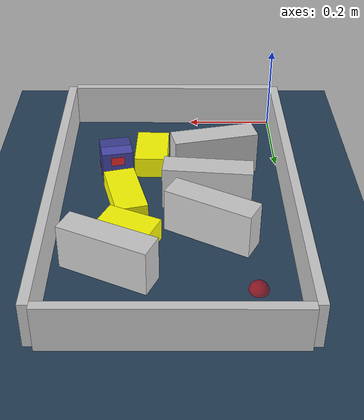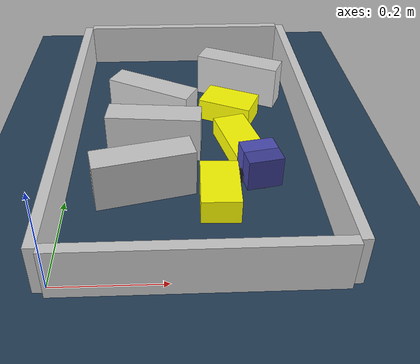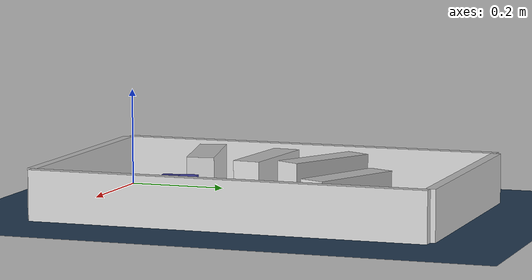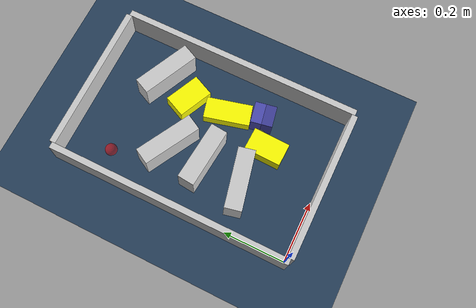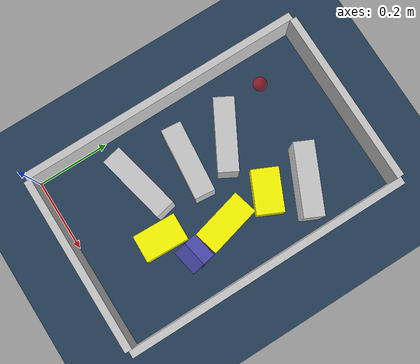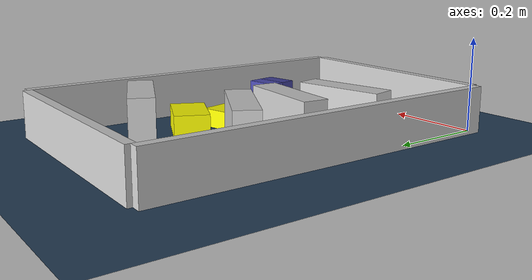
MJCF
<?xml version='1.0' encoding='utf-8'?>
<mujoco model="real_buildable">
  <compiler angle="degree" />
  <option timestep="0.002" integrator="implicitfast" iterations="100" cone="elliptic" />
  <default>
    <geom density="1" />
  </default>
  <asset>
    <texture builtin="gradient" height="3072" rgb1="0.3 0.5 0.7" rgb2="0 0 0" type="skybox" width="512" />
    <texture builtin="checker" height="300" mark="edge" markrgb="0.8 0.8 0.8" name="groundplane" rgb1="0.2 0.3 0.4" rgb2="0.1 0.2 0.3" type="2d" width="300" />
    <material name="groundplane" reflectance="0.2" texrepeat="5 5" texture="groundplane" texuniform="true" />
  </asset>
  <worldbody>
    <light dir="0 0 -1" directional="true" pos="0 0 1.5" />
    <geom name="floor" type="plane" condim="4" friction="0.5 0.005 0.001" material="groundplane" size="0 0 0.05" />
    <body name="walls">
      <geom name="wall_boundary_left" type="box" condim="4" friction="1.0 0.005 0.0001" rgba="0.8 0.8 0.8 1" pos="-0.010000 0.387500 0.050000" euler="0 0 0.000000" size="0.010000 0.397500 0.050000" />
      <geom name="wall_boundary_right" type="box" condim="4" friction="1.0 0.005 0.0001" rgba="0.8 0.8 0.8 1" pos="0.500000 0.387500 0.050000" euler="0 0 0.000000" size="0.010000 0.397500 0.050000" />
      <geom name="wall_boundary_bottom" type="box" condim="4" friction="1.0 0.005 0.0001" rgba="0.8 0.8 0.8 1" pos="0.245000 -0.010000 0.050000" euler="0 0 0.000000" size="0.245000 0.010000 0.050000" />
      <geom name="wall_boundary_top" type="box" condim="4" friction="1.0 0.005 0.0001" rgba="0.8 0.8 0.8 1" pos="0.245000 0.785000 0.050000" euler="0 0 0.000000" size="0.245000 0.010000 0.050000" />
      <geom name="wall_inner_1" type="box" condim="4" friction="1.0 0.005 0.0001" rgba="0.8 0.8 0.8 1" pos="0.150663 0.222667 0.050000" euler="0 0 192.552249" size="0.097500 0.027500 0.050000" />
      <geom name="wall_inner_2" type="box" condim="4" friction="1.0 0.005 0.0001" rgba="0.8 0.8 0.8 1" pos="0.169535 0.357190 0.050000" euler="0 0 174.526603" size="0.097500 0.027500 0.050000" />
      <geom name="wall_inner_3" type="box" condim="4" friction="1.0 0.005 0.0001" rgba="0.8 0.8 0.8 1" pos="0.165000 0.474000 0.050000" euler="0 0 151.300000" size="0.097500 0.027500 0.050000" />
      <geom name="wall_inner_4" type="box" condim="4" friction="1.0 0.005 0.0001" rgba="0.8 0.8 0.8 1" pos="0.372000 0.588000 0.050000" euler="0 0 154.700000" size="0.097500 0.027500 0.050000" />
    </body>
    <body name="car" pos="0.37642384063745415 0.24636826526928154 0.01" quat="0.63933678737106392 0 0 0.76892683157375064">
      <freejoint name="car_freejoint" />
      <inertial pos="0 0 0.0375" mass="0.35" diaginertia="0.000266 0.000266 0.000286" />
      <geom name="front_chassis_collision" type="box" pos="0.0175 0 0.0375" size="0.0175 0.035 0.0325" rgba="0.3 0.3 0.7 1" />
      <geom name="rear_chassis_collision" type="box" pos="-0.0175 0 0.0375" size="0.0175 0.035 0.0325" rgba="0.25 0.25 0.6 1" />
      <geom name="front_marker" type="box" pos="0.034 0 0.0505" size="0.002 0.015 0.01" rgba="1 0.2 0.2 1" contype="0" conaffinity="0" />
      <body name="rear_support_body" pos="-0.03 0 0.0025">
        <joint name="rear_caster_joint" type="ball" damping="0.0001" />
        <inertial pos="0 0 0" mass="0.025" diaginertia="0.000001 0.000001 0.000001" />
        <geom name="rear_support" type="sphere" pos="0 0 0" size="0.0025" friction="0 0 0" rgba="0.7 0.1 0.1 1" />
      </body>
      <body name="front_support_body" pos="0.03 0 0.0025">
        <joint name="front_caster_joint" type="ball" damping="0.0001" />
        <inertial pos="0 0 0" mass="0.025" diaginertia="0.000001 0.000001 0.000001" />
        <geom name="front_support" type="sphere" pos="0 0 0" size="0.0025" friction="0 0 0" rgba="0.1 0.7 0.1 1" />
      </body>
      <body name="left_wheel" pos="0 0.0375 0.015">
        <inertial pos="0 0 0" mass="0.05" diaginertia="0.000003 0.000006 0.000003" />
        <joint name="left_wheel_joint" type="hinge" axis="0 1 0" damping="0.01" armature="0.0001" />
        <geom name="left_wheel_collision" type="cylinder" size="0.015 0.0005" euler="90 0 0" rgba="0.1 0.1 0.1 1" />
      </body>
      <body name="right_wheel" pos="0 -0.0375 0.015">
        <inertial pos="0 0 0" mass="0.05" diaginertia="0.000003 0.000006 0.000003" />
        <joint name="right_wheel_joint" type="hinge" axis="0 1 0" damping="0.01" armature="0.0001" />
        <geom name="right_wheel_collision" type="cylinder" size="0.015 0.0005" euler="90 0 0" rgba="0.1 0.1 0.1 1" />
      </body>
    </body>
    <body name="obstacle_0_movable">
      <geom name="obstacle_0_movable" condim="4" pos="0.3505064759495406 0.35641919310700493 0.02" friction="1 0.005 0.0001" rgba="1 1 0 1" size="0.035000 0.075000 0.020000" type="box" mass="0.1" quat="0.99201346498162735 0 0 0.12613201534561203" />
      <joint type="free" />
    </body>
    <body name="obstacle_1_movable">
      <geom name="obstacle_1_movable" condim="4" pos="0.33915336735477386 0.49138782906812983 0.025000000000000001" friction="1 0.005 0.0001" rgba="1 1 0 1" size="0.037500 0.060000 0.025000" type="box" mass="0.1" quat="0.84291829647864935 0 0 0.53804158339438024" />
      <joint type="free" />
    </body>
    <body name="obstacle_2_movable">
      <geom name="obstacle_2_movable" condim="4" pos="0.29452711747699006 0.19503431800839033 0.025000000000000001" friction="1 0.005 0.0001" rgba="1 1 0 1" size="0.037500 0.060000 0.025000" type="box" mass="0.1" quat="0.017279204112973866 0 0 0.99985070340787485" />
      <joint type="free" />
    </body>
    <site name="goal" type="sphere" pos="0.080000 0.640000 0.0" size="0.02" rgba="1 0 0 0.5" />
  </worldbody>
  <actuator>
    <velocity name="left_wheel_drive" joint="left_wheel_joint" ctrlrange="-25 25" kv="0.75" forcerange="-0.5 0.5" />
    <velocity name="right_wheel_drive" joint="right_wheel_joint" ctrlrange="-25 25" kv="0.75" forcerange="-0.5 0.5" />
  </actuator>
</mujoco>
